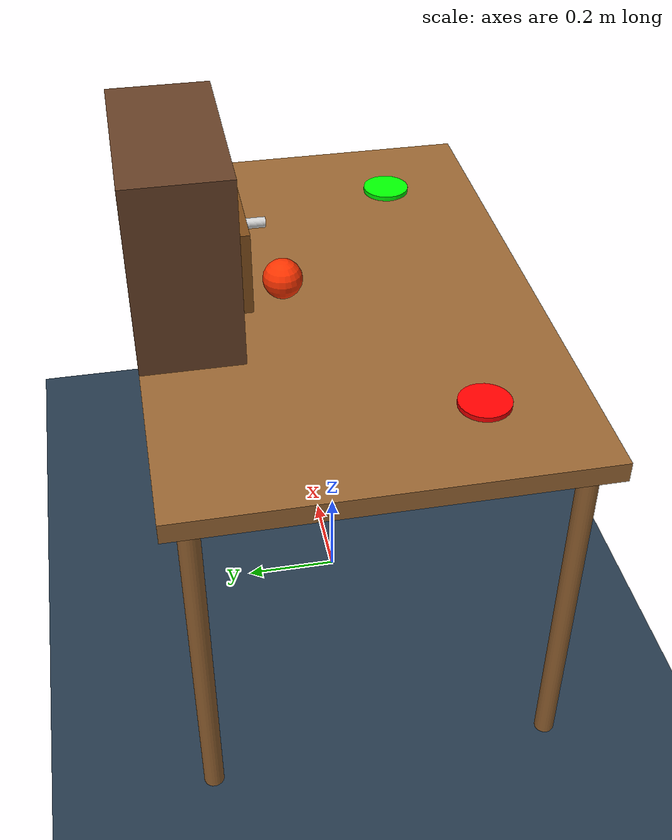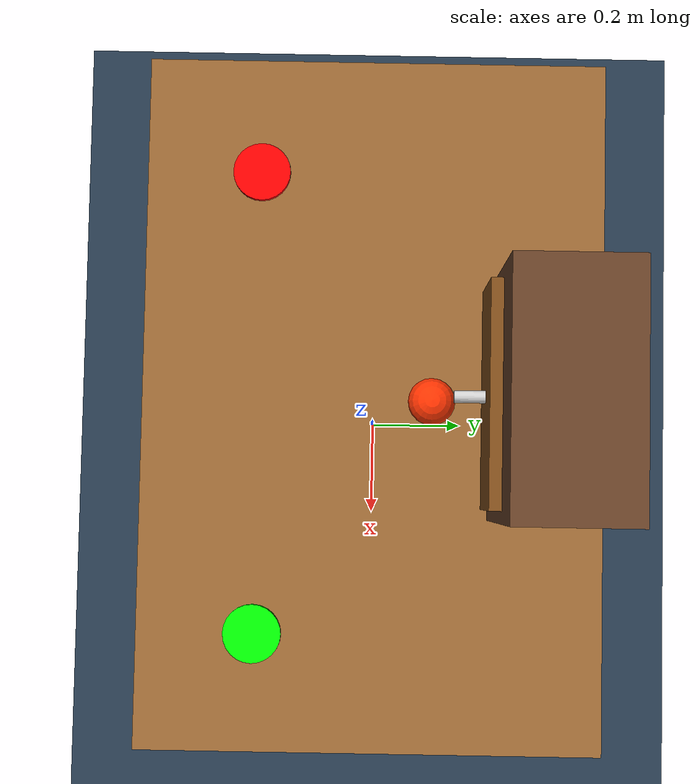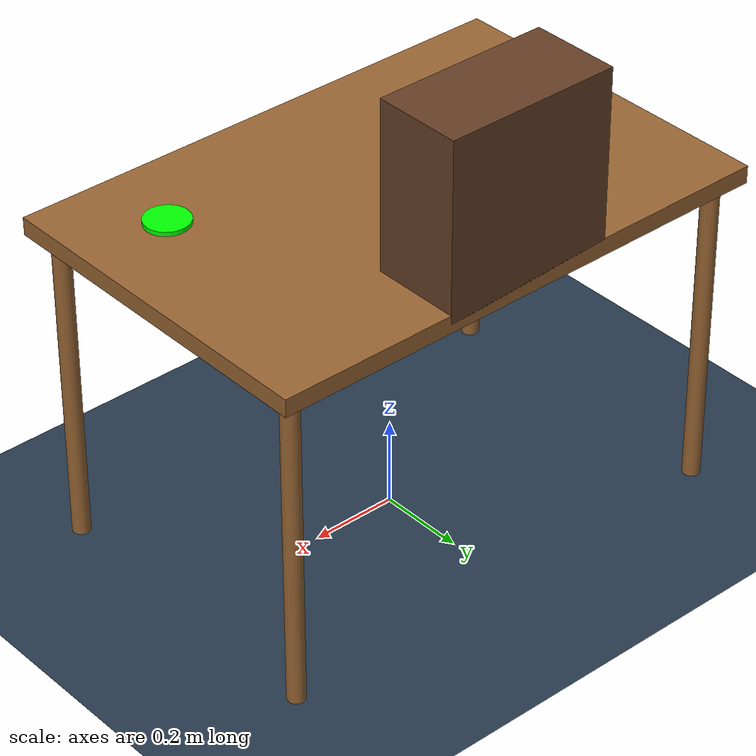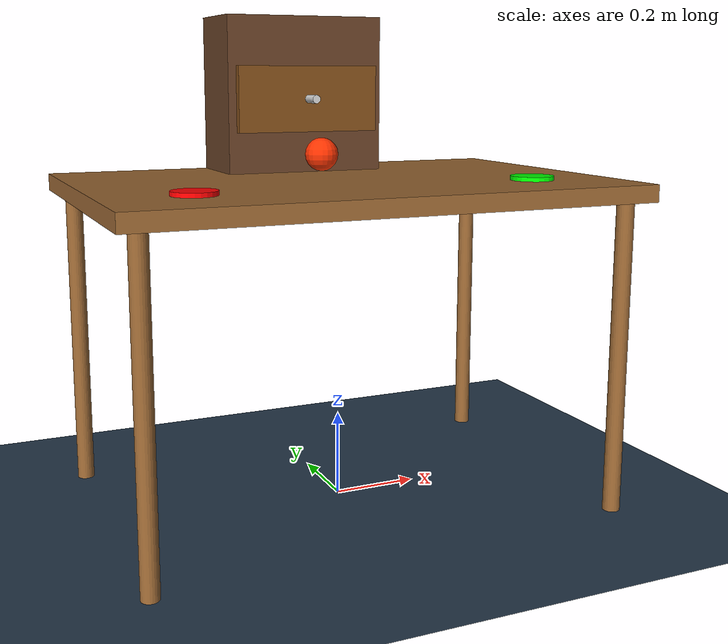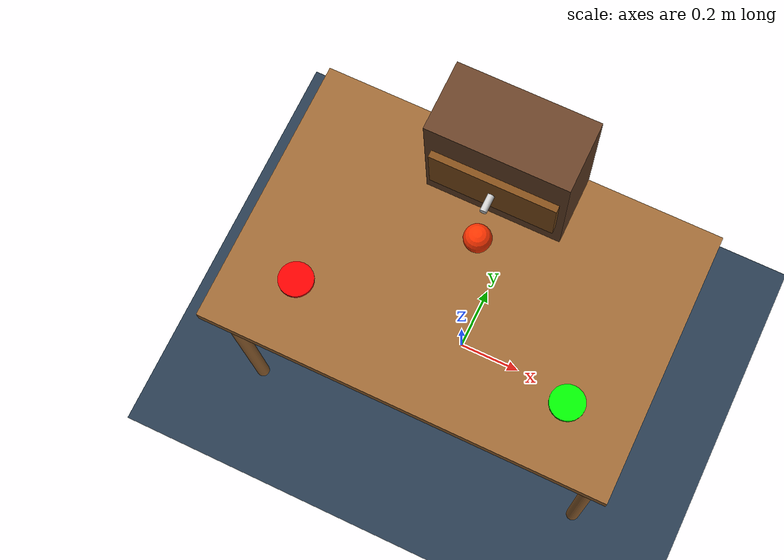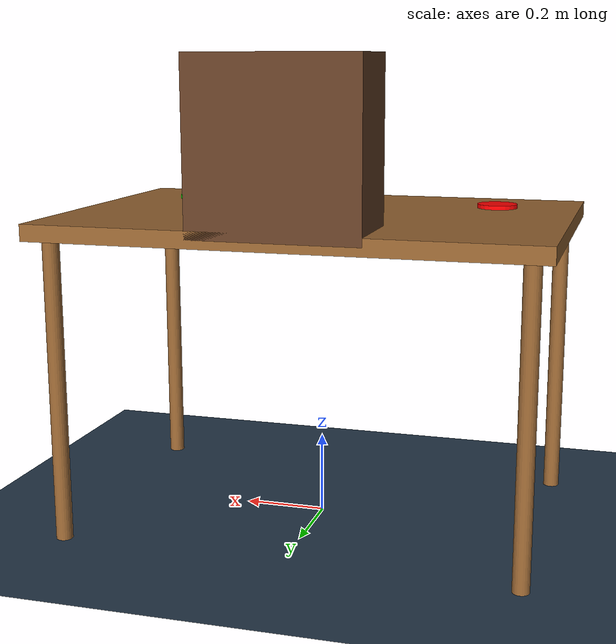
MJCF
<mujoco model="bimanual_dinner_table">
    <compiler angle="radian" coordinate="local" inertiafromgeom="true"/>
    <option timestep="0.002" iterations="50" tolerance="1e-4" gravity="0 0 -9.81"/>

    <include file="objects.xml"/>

    <visual>
        <map force="0.1" zfar="30"/>
        <rgba haze="0.15 0.25 0.35 1"/>
        <global offwidth="1920" offheight="1080" elevation="-20" azimuth="120"/>
    </visual>

    <asset>
        <texture type="skybox" builtin="gradient" rgb1="0.3 0.5 0.7" rgb2="0 0 0" width="512" height="512"/>
        <texture name="texplane" type="2d" builtin="checker" rgb1=".2 .3 .4" rgb2=".1 0.15 0.2" width="512" height="512" mark="cross" markrgb=".8 .8 .8"/>
        <material name="matplane" reflectance="0.3" texture="texplane" texrepeat="1 1" texuniform="true"/>
        <material name="table_mat" rgba="0.6 0.4 0.2 1" specular="0.1"/>
        <material name="cabinet_mat" rgba="0.4 0.25 0.15 1" specular="0.2"/>
    </asset>

    <worldbody>
        <light name="main_light" directional="true" diffuse="0.8 0.8 0.8" specular="0.2 0.2 0.2" pos="0 0 5" dir="0 0 -1"/>
        <geom name="floor" type="plane" size="0 0 1" pos="0 0 0" material="matplane" condim="3"/>

        <!-- Main Camera -->
        <camera name="main_cam" pos="0 -1.5 1.5" xyaxes="1 0 0 0 1 1" mode="targetbody" target="table"/>

        <!-- The Dinner Table -->
        <body name="table" pos="0 0 0.75">
            <geom name="table_top" type="box" size="0.6 0.4 0.02" material="table_mat" friction="1 0.005 0.0001"/>
            <geom type="cylinder" size="0.02 0.375" pos="0.55 0.35 -0.375" material="table_mat"/>
            <geom type="cylinder" size="0.02 0.375" pos="-0.55 0.35 -0.375" material="table_mat"/>
            <geom type="cylinder" size="0.02 0.375" pos="0.55 -0.35 -0.375" material="table_mat"/>
            <geom type="cylinder" size="0.02 0.375" pos="-0.55 -0.35 -0.375" material="table_mat"/>
        </body>

        <!-- Cabinet and Drawer (For Target Scenario: "Open a drawer") -->
        <body name="cabinet" pos="0 0.3 0.95">
            <geom name="cabinet_body" type="box" size="0.2 0.1 0.2" material="cabinet_mat"/>
            <!-- Sliding Drawer -->
            <body name="drawer" pos="0 -0.1 0">
                <joint name="drawer_slide" type="slide" axis="0 1 0" range="0 0.15" damping="1.0"/>
                <geom name="drawer_front" type="box" size="0.18 0.02 0.08" rgba="0.5 0.3 0.1 1"/>
                <geom name="drawer_handle" type="cylinder" size="0.01 0.05" pos="0 -0.02 0" xyaxes="1 0 0 0 0 1" rgba="0.8 0.8 0.8 1"/>
            </body>
        </body>

        <!-- Placeholder attachment points for the arms -->
        <body name="arm_left_base" pos="-0.4 -0.2 0.77">
            <geom type="cylinder" size="0.05 0.01" rgba="1 0 0 1"/>
        </body>

        <body name="arm_right_base" pos="0.4 -0.2 0.77">
            <geom type="cylinder" size="0.05 0.01" rgba="0 1 0 1"/>
        </body>

        <!-- Dynamic Obstacle for Collision Avoidance Testing -->
        <body name="dynamic_obstacle" pos="0 0.1 0.82">
            <joint name="obstacle_slide" type="slide" axis="1 0 0" damping="0.1"/>
            <geom name="obstacle_geom" type="sphere" size="0.04" rgba="1 0.2 0 1" mass="0.5"/>
        </body>
    </worldbody>
</mujoco>

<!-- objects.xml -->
<mujoco>
    <compiler angle="radian"/>

    <default>
        <geom friction="1 0.005 0.0001" margin="0.001" condim="4"/>
    </default>

    <asset>
        <!-- Placeholders for object materials/colors -->
        <material name="mat_plate" rgba="0.9 0.9 0.9 1" specular="0.5" shininess="0.5"/>
        <material name="mat_cup" rgba="0.2 0.5 0.8 1" specular="0.5" shininess="0.5"/>
        <material name="mat_silverware" rgba="0.8 0.8 0.8 1" specular="1.0" shininess="0.8" metallic="1.0"/>
    </asset>

    <body>
        <!-- Plate -->
        <body name="plate" pos="0 0 0.8">
            <freejoint/>
            <geom name="plate_geom" type="cylinder" size="0.12 0.01" material="mat_plate" mass="0.5"/>
        </body>

        <!-- Cup -->
        <body name="cup" pos="0.2 0.2 0.82">
            <freejoint/>
            <geom name="cup_geom" type="cylinder" size="0.04 0.05" material="mat_cup" mass="0.2"/>
        </body>

        <!-- Spoon -->
        <body name="spoon" pos="-0.2 0.1 0.81">
            <freejoint/>
            <geom name="spoon_handle" type="box" size="0.01 0.06 0.005" pos="0 -0.04 0" material="mat_silverware" mass="0.05"/>
            <geom name="spoon_head" type="ellipsoid" size="0.02 0.03 0.005" pos="0 0.03 0" material="mat_silverware" mass="0.05"/>
        </body>

        <!-- Fork -->
        <body name="fork" pos="-0.25 0.1 0.81">
            <freejoint/>
            <geom name="fork_handle" type="box" size="0.01 0.06 0.005" pos="0 -0.04 0" material="mat_silverware" mass="0.05"/>
            <geom name="fork_head" type="box" size="0.02 0.03 0.002" pos="0 0.03 0" material="mat_silverware" mass="0.05"/>
        </body>
    </body>
</mujoco>
